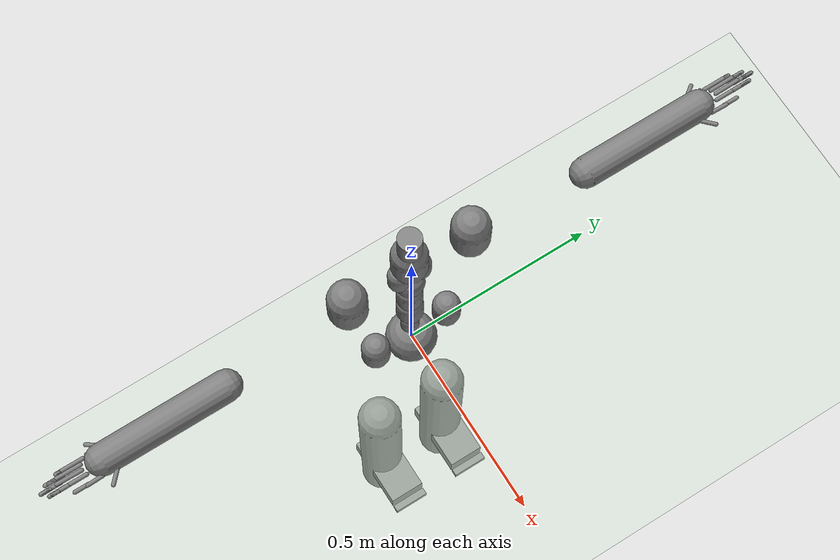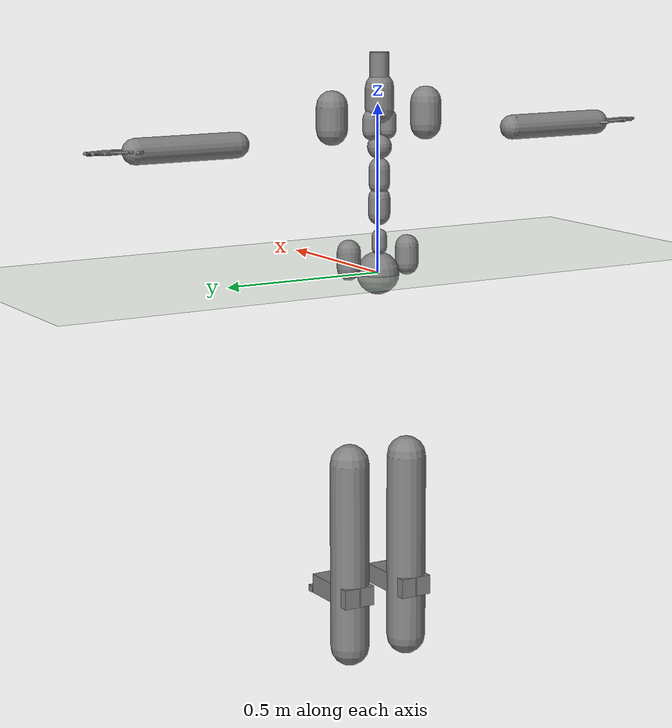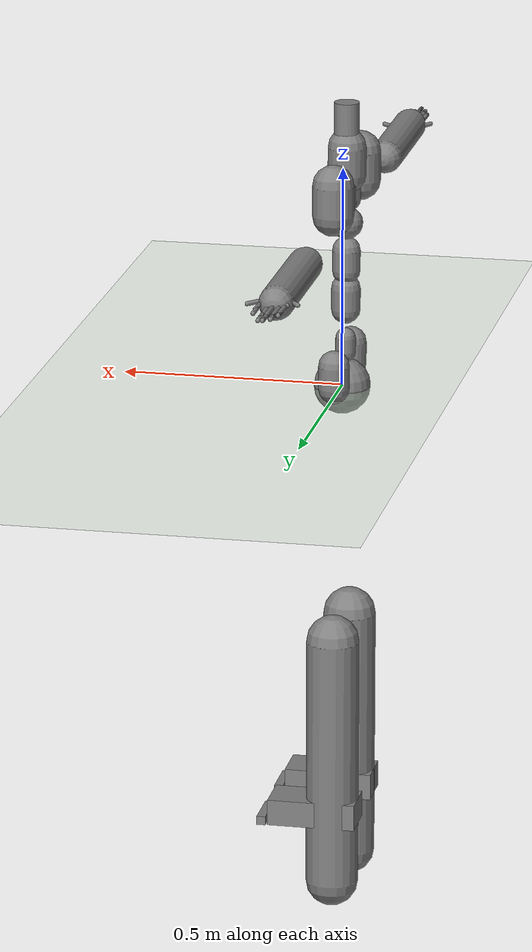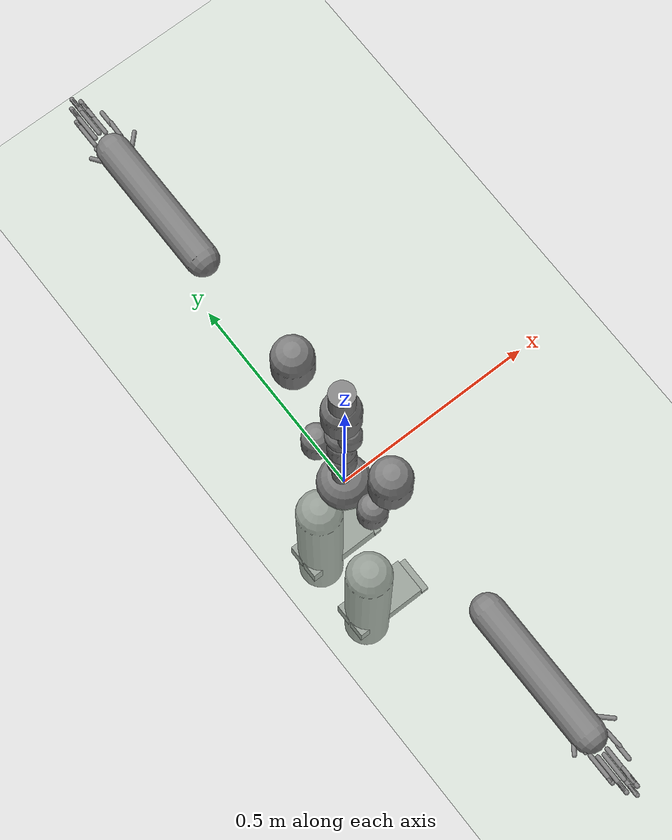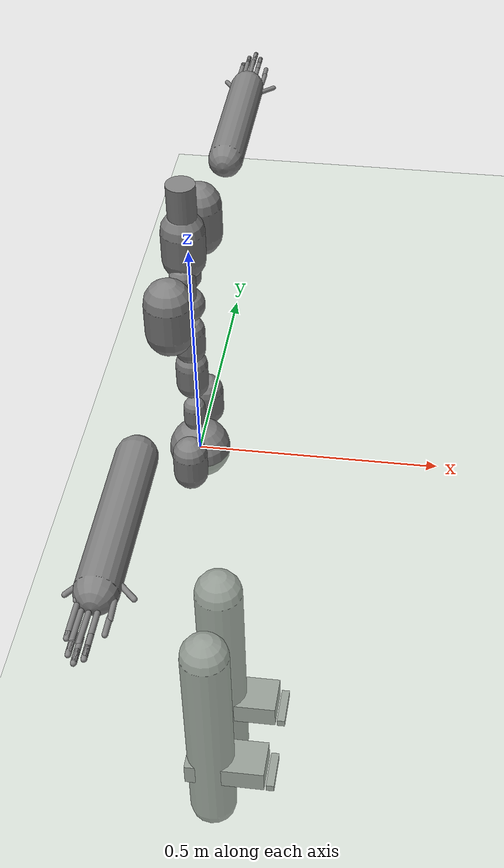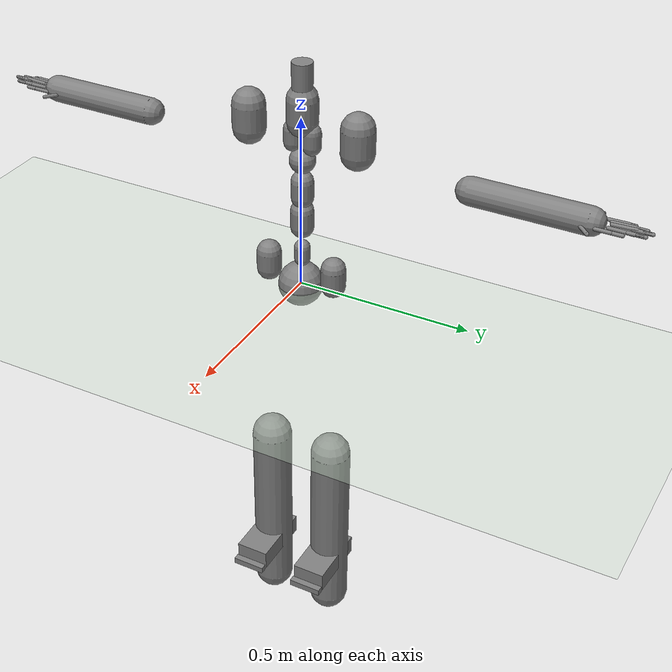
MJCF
<?xml version="1.0" ?>
<mujoco model="humanoid">
  <compiler coordinate="local"/>
  <statistic extent="2" center="0 0 1"/>
  <option timestep="0.00555"/>
  <default>
    <motor ctrlrange="-1 1" ctrllimited="true"/>
    <geom type="capsule" condim="1" friction="1.0 0.05 0.05" solimp=".9 .99 .003" solref=".015 1"/>
    <joint type="hinge" damping="0.1" stiffness="5" armature=".007" limited="true" solimplimit="0 .99 .01"/>
    <site size=".04" group="3"/>
  </default>
  <asset>
    <texture type="skybox" builtin="gradient" rgb1=".4 .5 .6" rgb2="0 0 0" width="100" height="100"/>
    <texture builtin="flat" height="1278" mark="cross" markrgb="1 1 1" name="texgeom" random="0.01" rgb1="0.8 0.6 0.4" rgb2="0.8 0.6 0.4" type="cube" width="127"/>
    <texture builtin="checker" height="100" name="texplane" rgb1="0 0 0" rgb2="0.8 0.8 0.8" type="2d" width="100"/>
    <material name="MatPlane" reflectance="0.5" shininess="1" specular="1" texrepeat="60 60" texture="texplane"/>
    <material name="geom" texture="texgeom" texuniform="true"/>
  </asset>
  <worldbody>
    <light cutoff="100" diffuse="1 1 1" dir="-0 0 -1.3" directional="true" exponent="1" pos="0 0 1.3" specular=".1 .1 .1"/>
    <geom conaffinity="1" condim="3" name="floor" pos="0 0 0" rgba="0.8 0.9 0.8 1" size="100 100 .2" type="plane" material="MatPlane"/>
    <body name="pHipOrigin" pos="0 0 0">
      <freejoint name="pHipOrigin"/>
      <geom type="sphere" contype="1" conaffinity="1" density="4629.6296296296305" size="0.06378" pos="0.0000 0.0000 -0.0000"/>
      <body name="jL5S1" pos="-0.00718730 0 0.06468552">
        <geom type="capsule" contype="1" conaffinity="1" density="1000" fromto="0 0 0.01302 0 0 0.04556" size="0.02278"/>
        <joint name="jL5S1_x" type="hinge" pos="0 0 0" axis="1 0 0" stiffness="500" damping="500" armature="0.02" range="-180.0000 180.0000"/>
        <joint name="jL5S1_y" type="hinge" pos="0 0 0" axis="0 1 0" stiffness="500" damping="500" armature="0.02" range="-180.0000 180.0000"/>
        <joint name="jL5S1_z" type="hinge" pos="0 0 0" axis="0 0 1" stiffness="500" damping="500" armature="0.02" range="-180.0000 180.0000"/>
        <body name="jL4L3" pos="0 0 0.09388383">
          <geom type="capsule" contype="1" conaffinity="1" density="1000" fromto="0 0 0.01878 0 0 0.06572" size="0.03286"/>
          <joint name="jL4L3_x" type="hinge" pos="0 0 0" axis="1 0 0" stiffness="500" damping="500" armature="0.02" range="-180.0000 180.0000"/>
          <joint name="jL4L3_y" type="hinge" pos="0 0 0" axis="0 1 0" stiffness="500" damping="500" armature="0.02" range="-180.0000 180.0000"/>
          <joint name="jL4L3_z" type="hinge" pos="0 0 0" axis="0 0 1" stiffness="500" damping="500" armature="0.02" range="-180.0000 180.0000"/>
          <body name="jL1T12" pos="-0.00069758 0 0.09041847">
            <geom type="capsule" contype="1" conaffinity="1" density="1000" fromto="0 0 0.01808 0 0 0.06329" size="0.03165"/>
            <joint name="jL1T12_x" type="hinge" pos="0 0 0" axis="1 0 0" stiffness="500" damping="500" armature="0.02" range="-180.0000 180.0000"/>
            <joint name="jL1T12_y" type="hinge" pos="0 0 0" axis="0 1 0" stiffness="500" damping="500" armature="0.02" range="-180.0000 180.0000"/>
            <joint name="jL1T12_z" type="hinge" pos="0 0 0" axis="0 0 1" stiffness="500" damping="500" armature="0.02" range="-180.0000 180.0000"/>
            <body name="jT9T8" pos="-0.00070014 0 0.09057368">
              <geom type="sphere" contype="1" conaffinity="1" density="1000" size="0.03623" pos="0.000 0.0000 0.036231"/>
              <joint name="jT9T8_x" type="hinge" pos="0 0 0" axis="1 0 0" stiffness="500" damping="500" armature="0.02" range="-180.0000 180.0000"/>
              <joint name="jT9T8_y" type="hinge" pos="0 0 0" axis="0 1 0" stiffness="500" damping="500" armature="0.02" range="-180.0000 180.0000"/>
              <joint name="jT9T8_z" type="hinge" pos="0 0 0" axis="0 0 1" stiffness="500" damping="500" armature="0.02" range="-180.0000 180.0000"/>
              <body name="jT1C7" pos="0 0 0.12274900">
                <geom type="capsule" contype="1" conaffinity="1" density="1000" fromto="0 0 0.02455 0 0 0.08592" size="0.04296"/>
                <joint name="jT1C7_x" type="hinge" pos="0 0 0" axis="1 0 0" stiffness="500" damping="500" armature="0.02" range="-180.0000 180.0000"/>
                <joint name="jT1C7_y" type="hinge" pos="0 0 0" axis="0 1 0" stiffness="500" damping="500" armature="0.02" range="-180.0000 180.0000"/>
                <joint name="jT1C7_z" type="hinge" pos="0 0 0" axis="0 0 1" stiffness="500" damping="500" armature="0.02" range="-180.0000 180.0000"/>
                <body name="jC1Head" pos="0.00111202 0 0.09425794">
                  <geom type="cylinder" contype="1" conaffinity="1" density="1000" fromto="0 0 0 0 0 0.09426" size="0.02828"/>
                  <joint name="jC1Head_x" type="hinge" pos="0 0 0" axis="1 0 0" stiffness="500" damping="500" armature="0.02" range="-180.0000 180.0000"/>
                  <joint name="jC1Head_y" type="hinge" pos="0 0 0" axis="0 1 0" stiffness="500" damping="500" armature="0.02" range="-180.0000 180.0000"/>
                  <joint name="jC1Head_z" type="hinge" pos="0 0 0" axis="0 0 1" stiffness="500" damping="500" armature="0.02" range="-180.0000 180.0000"/>
                </body>
              </body>
              <body name="jRightT4Shoulder" pos="0 -0.02812971 0.06858641">
                <geom type="capsule" contype="1" conaffinity="1" density="1000" fromto="0 0 0.01483 0 0 0.05189" size="0.02595"/>
                <joint name="jRightT4Shoulder_x" type="hinge" pos="0 0 0" axis="1 0 0" stiffness="500" damping="500" armature="0.02" range="-180.0000 180.0000"/>
                <joint name="jRightT4Shoulder_y" type="hinge" pos="0 0 0" axis="0 1 0" stiffness="500" damping="500" armature="0.02" range="-180.0000 180.0000"/>
                <joint name="jRightT4Shoulder_z" type="hinge" pos="0 0 0" axis="0 0 1" stiffness="500" damping="500" armature="0.02" range="-180.0000 180.0000"/>
                <body name="jRightShoulder" pos="0 -0.13208346 0">
                  <geom type="capsule" contype="1" conaffinity="1" density="1000" fromto="0 0 0.02642 0 0 0.09246" size="0.04623"/>
                  <joint name="jRightShoulder_x" type="hinge" pos="0 0 0" axis="1 0 0" stiffness="500" damping="500" armature="0.02" range="-180.0000 180.0000"/>
                  <joint name="jRightShoulder_y" type="hinge" pos="0 0 0" axis="0 1 0" stiffness="500" damping="500" armature="0.02" range="-180.0000 180.0000"/>
                  <joint name="jRightShoulder_z" type="hinge" pos="0 0 0" axis="0 0 1" stiffness="500" damping="500" armature="0.02" range="-180.0000 180.0000"/>
                  <body name="jRightElbow" pos="0 -0.31279701 0">
                    <geom type="capsule" contype="1" conaffinity="1" density="1000" fromto="0 0 0 0.00000000 -0.31279701 0.00000000" size="0.03754"/>
                    <joint name="jRightElbow_x" type="hinge" pos="0 0 0" axis="1 0 0" stiffness="500" damping="500" armature="0.02" range="-180.0000 180.0000"/>
                    <joint name="jRightElbow_y" type="hinge" pos="0 0 0" axis="0 1 0" stiffness="500" damping="500" armature="0.02" range="-180.0000 180.0000"/>
                    <joint name="jRightElbow_z" type="hinge" pos="0 0 0" axis="0 0 1" stiffness="500" damping="500" armature="0.02" range="-180.0000 180.0000"/>
                    <body name="jRightWrist" pos="0.00010446 -0.25954044 0">
                      <geom density="1000" type="box" pos="0 0 0" size="0.035 0.03 0.01" quat="1.0000 0.0000 0.0000 0.0000"/>
                      <joint name="jRightWrist_x" type="hinge" pos="0 0 0" axis="1 0 0" stiffness="500" damping="500" armature="0.02" range="-180.0000 180.0000"/>
                      <joint name="jRightWrist_y" type="hinge" pos="0 0 0" axis="0 1 0" stiffness="500" damping="500" armature="0.02" range="-180.0000 180.0000"/>
                      <joint name="jRightWrist_z" type="hinge" pos="0 0 0" axis="0 0 1" stiffness="500" damping="500" armature="0.02" range="-180.0000 180.0000"/>
                      <body name="jRightFirstCMC" pos="0.03066655 -0.02939561 -0.00138877">
                        <geom type="capsule" contype="1" conaffinity="1" density="1000" fromto="0 0 0 0.03066655 -0.02939561 -0.00138877" size="0.005"/>
                        <joint name="jRightFirstCMC_x" type="hinge" pos="0 0 0" axis="1 0 0" stiffness="500" damping="500" armature="0.02" range="-180.0000 180.0000"/>
                        <joint name="jRightFirstCMC_y" type="hinge" pos="0 0 0" axis="0 1 0" stiffness="500" damping="500" armature="0.02" range="-180.0000 180.0000"/>
                        <joint name="jRightFirstCMC_z" type="hinge" pos="0 0 0" axis="0 0 1" stiffness="500" damping="500" armature="0.02" range="-180.0000 180.0000"/>
                        <body name="jRightFirstMCP" pos="0.00138104 -0.03897191 0.00082347">
                          <geom type="capsule" contype="1" conaffinity="1" density="1000" fromto="0 0 0 0.00138104 -0.03897191 0.00082347" size="0.005"/>
                          <joint name="jRightFirstMCP_x" type="hinge" pos="0 0 0" axis="1 0 0" stiffness="500" damping="500" armature="0.02" range="-180.0000 180.0000"/>
                          <joint name="jRightFirstMCP_y" type="hinge" pos="0 0 0" axis="0 1 0" stiffness="500" damping="500" armature="0.02" range="-180.0000 180.0000"/>
                          <joint name="jRightFirstMCP_z" type="hinge" pos="0 0 0" axis="0 0 1" stiffness="500" damping="500" armature="0.02" range="-180.0000 180.0000"/>
                          <body name="jRightIP" pos="0 -0.03426482 0">
                            <geom type="capsule" contype="1" conaffinity="1" density="1000" fromto="0 0 0 0.00000000 -0.03426482 0.00000000" size="0.005"/>
                            <joint name="jRightIP_x" type="hinge" pos="0 0 0" axis="1 0 0" stiffness="500" damping="500" armature="0.02" range="-180.0000 180.0000"/>
                            <joint name="jRightIP_y" type="hinge" pos="0 0 0" axis="0 1 0" stiffness="500" damping="500" armature="0.02" range="-180.0000 180.0000"/>
                            <joint name="jRightIP_z" type="hinge" pos="0 0 0" axis="0 0 1" stiffness="500" damping="500" armature="0.02" range="-180.0000 180.0000"/>
                          </body>
                        </body>
                      </body>
                      <body name="jRightSecondCMC" pos="0.01122575 -0.03279808 -0.00057208">
                        <geom type="capsule" contype="1" conaffinity="1" density="1000" fromto="0 0 0 0.01122575 -0.03279808 -0.00057208" size="0.005"/>
                        <joint name="jRightSecondCMC_x" type="hinge" pos="0 0 0" axis="1 0 0" stiffness="500" damping="500" armature="0.02" range="-180.0000 180.0000"/>
                        <joint name="jRightSecondCMC_y" type="hinge" pos="0 0 0" axis="0 1 0" stiffness="500" damping="500" armature="0.02" range="-180.0000 180.0000"/>
                        <joint name="jRightSecondCMC_z" type="hinge" pos="0 0 0" axis="0 0 1" stiffness="500" damping="500" armature="0.02" range="-180.0000 180.0000"/>
                        <body name="jRightSecondMCP" pos="-0.00039542 -0.06306709 -0.00065421">
                          <geom type="capsule" contype="1" conaffinity="1" density="1000" fromto="0 0 0 -0.00039542 -0.06306709 -0.00065421" size="0.005"/>
                          <joint name="jRightSecondMCP_x" type="hinge" pos="0 0 0" axis="1 0 0" stiffness="500" damping="500" armature="0.02" range="-180.0000 180.0000"/>
                          <joint name="jRightSecondMCP_y" type="hinge" pos="0 0 0" axis="0 1 0" stiffness="500" damping="500" armature="0.02" range="-180.0000 180.0000"/>
                          <joint name="jRightSecondMCP_z" type="hinge" pos="0 0 0" axis="0 0 1" stiffness="500" damping="500" armature="0.02" range="-180.0000 180.0000"/>
                          <body name="jRightSecondPIP" pos="0 -0.04563735 0">
                            <geom type="capsule" contype="1" conaffinity="1" density="1000" fromto="0 0 0 0.00000000 -0.04563735 0.00000000" size="0.005"/>
                            <joint name="jRightSecondPIP_x" type="hinge" pos="0 0 0" axis="1 0 0" stiffness="500" damping="500" armature="0.02" range="-180.0000 180.0000"/>
                            <joint name="jRightSecondPIP_y" type="hinge" pos="0 0 0" axis="0 1 0" stiffness="500" damping="500" armature="0.02" range="-180.0000 180.0000"/>
                            <joint name="jRightSecondPIP_z" type="hinge" pos="0 0 0" axis="0 0 1" stiffness="500" damping="500" armature="0.02" range="-180.0000 180.0000"/>
                            <body name="jRightSecondDIP" pos="0 -0.02106094 0">
                              <geom type="capsule" contype="1" conaffinity="1" density="1000" fromto="0 0 0 0.00000000 -0.02106094 0.00000000" size="0.005"/>
                              <joint name="jRightSecondDIP_x" type="hinge" pos="0 0 0" axis="1 0 0" stiffness="500" damping="500" armature="0.02" range="-180.0000 180.0000"/>
                              <joint name="jRightSecondDIP_y" type="hinge" pos="0 0 0" axis="0 1 0" stiffness="500" damping="500" armature="0.02" range="-180.0000 180.0000"/>
                              <joint name="jRightSecondDIP_z" type="hinge" pos="0 0 0" axis="0 0 1" stiffness="500" damping="500" armature="0.02" range="-180.0000 180.0000"/>
                            </body>
                          </body>
                        </body>
                      </body>
                      <body name="jRightThirdCMC" pos="-0.00073629 -0.03981684 0.00167396">
                        <geom type="capsule" contype="1" conaffinity="1" density="1000" fromto="0 0 0 -0.00073629 -0.03981684 0.00167396" size="0.005"/>
                        <joint name="jRightThirdCMC_x" type="hinge" pos="0 0 0" axis="1 0 0" stiffness="500" damping="500" armature="0.02" range="-180.0000 180.0000"/>
                        <joint name="jRightThirdCMC_y" type="hinge" pos="0 0 0" axis="0 1 0" stiffness="500" damping="500" armature="0.02" range="-180.0000 180.0000"/>
                        <joint name="jRightThirdCMC_z" type="hinge" pos="0 0 0" axis="0 0 1" stiffness="500" damping="500" armature="0.02" range="-180.0000 180.0000"/>
                        <body name="jRightThirdMCP" pos="-0.00073762 -0.06111223 0.00166263">
                          <geom type="capsule" contype="1" conaffinity="1" density="1000" fromto="0 0 0 -0.00073762 -0.06111223 0.00166263" size="0.005"/>
                          <joint name="jRightThirdMCP_x" type="hinge" pos="0 0 0" axis="1 0 0" stiffness="500" damping="500" armature="0.02" range="-180.0000 180.0000"/>
                          <joint name="jRightThirdMCP_y" type="hinge" pos="0 0 0" axis="0 1 0" stiffness="500" damping="500" armature="0.02" range="-180.0000 180.0000"/>
                          <joint name="jRightThirdMCP_z" type="hinge" pos="0 0 0" axis="0 0 1" stiffness="500" damping="500" armature="0.02" range="-180.0000 180.0000"/>
                          <body name="jRightThirdPIP" pos="0 -0.04975163 0">
                            <geom type="capsule" contype="1" conaffinity="1" density="1000" fromto="0 0 0 0.00000000 -0.04975163 0.00000000" size="0.005"/>
                            <joint name="jRightThirdPIP_x" type="hinge" pos="0 0 0" axis="1 0 0" stiffness="500" damping="500" armature="0.02" range="-180.0000 180.0000"/>
                            <joint name="jRightThirdPIP_y" type="hinge" pos="0 0 0" axis="0 1 0" stiffness="500" damping="500" armature="0.02" range="-180.0000 180.0000"/>
                            <joint name="jRightThirdPIP_z" type="hinge" pos="0 0 0" axis="0 0 1" stiffness="500" damping="500" armature="0.02" range="-180.0000 180.0000"/>
                            <body name="jRightThirdDIP" pos="0 -0.02392335 0">
                              <geom type="capsule" contype="1" conaffinity="1" density="1000" fromto="0 0 0 0.00000000 -0.02392335 0.00000000" size="0.005"/>
                              <joint name="jRightThirdDIP_x" type="hinge" pos="0 0 0" axis="1 0 0" stiffness="500" damping="500" armature="0.02" range="-180.0000 180.0000"/>
                              <joint name="jRightThirdDIP_y" type="hinge" pos="0 0 0" axis="0 1 0" stiffness="500" damping="500" armature="0.02" range="-180.0000 180.0000"/>
                              <joint name="jRightThirdDIP_z" type="hinge" pos="0 0 0" axis="0 0 1" stiffness="500" damping="500" armature="0.02" range="-180.0000 180.0000"/>
                            </body>
                          </body>
                        </body>
                      </body>
                      <body name="jRightFourthCMC" pos="-0.01355431 -0.03775100 0.00088860">
                        <geom type="capsule" contype="1" conaffinity="1" density="1000" fromto="0 0 0 -0.01355431 -0.03775100 0.00088860" size="0.005"/>
                        <joint name="jRightFourthCMC_x" type="hinge" pos="0 0 0" axis="1 0 0" stiffness="500" damping="500" armature="0.02" range="-180.0000 180.0000"/>
                        <joint name="jRightFourthCMC_y" type="hinge" pos="0 0 0" axis="0 1 0" stiffness="500" damping="500" armature="0.02" range="-180.0000 180.0000"/>
                        <joint name="jRightFourthCMC_z" type="hinge" pos="0 0 0" axis="0 0 1" stiffness="500" damping="500" armature="0.02" range="-180.0000 180.0000"/>
                        <body name="jRightFourthMCP" pos="-0.00043302 -0.05935017 0.00093244">
                          <geom type="capsule" contype="1" conaffinity="1" density="1000" fromto="0 0 0 -0.00043302 -0.05935017 0.00093244" size="0.005"/>
                          <joint name="jRightFourthMCP_x" type="hinge" pos="0 0 0" axis="1 0 0" stiffness="500" damping="500" armature="0.02" range="-180.0000 180.0000"/>
                          <joint name="jRightFourthMCP_y" type="hinge" pos="0 0 0" axis="0 1 0" stiffness="500" damping="500" armature="0.02" range="-180.0000 180.0000"/>
                          <joint name="jRightFourthMCP_z" type="hinge" pos="0 0 0" axis="0 0 1" stiffness="500" damping="500" armature="0.02" range="-180.0000 180.0000"/>
                          <body name="jRightFourthPIP" pos="0 -0.04136144 0">
                            <geom type="capsule" contype="1" conaffinity="1" density="1000" fromto="0 0 0 0.00000000 -0.04136144 0.00000000" size="0.005"/>
                            <joint name="jRightFourthPIP_x" type="hinge" pos="0 0 0" axis="1 0 0" stiffness="500" damping="500" armature="0.02" range="-180.0000 180.0000"/>
                            <joint name="jRightFourthPIP_y" type="hinge" pos="0 0 0" axis="0 1 0" stiffness="500" damping="500" armature="0.02" range="-180.0000 180.0000"/>
                            <joint name="jRightFourthPIP_z" type="hinge" pos="0 0 0" axis="0 0 1" stiffness="500" damping="500" armature="0.02" range="-180.0000 180.0000"/>
                            <body name="jRightFourthDIP" pos="0 -0.02276745 0">
                              <geom type="capsule" contype="1" conaffinity="1" density="1000" fromto="0 0 0 0.00000000 -0.02276745 0.00000000" size="0.005"/>
                              <joint name="jRightFourthDIP_x" type="hinge" pos="0 0 0" axis="1 0 0" stiffness="500" damping="500" armature="0.02" range="-180.0000 180.0000"/>
                              <joint name="jRightFourthDIP_y" type="hinge" pos="0 0 0" axis="0 1 0" stiffness="500" damping="500" armature="0.02" range="-180.0000 180.0000"/>
                              <joint name="jRightFourthDIP_z" type="hinge" pos="0 0 0" axis="0 0 1" stiffness="500" damping="500" armature="0.02" range="-180.0000 180.0000"/>
                            </body>
                          </body>
                        </body>
                      </body>
                      <body name="jRightFifthCMC" pos="-0.02372965 -0.03306456 0.00065226">
                        <geom type="capsule" contype="1" conaffinity="1" density="1000" fromto="0 0 0 -0.02372965 -0.03306456 0.00065226" size="0.005"/>
                        <joint name="jRightFifthCMC_x" type="hinge" pos="0 0 0" axis="1 0 0" stiffness="500" damping="500" armature="0.02" range="-180.0000 180.0000"/>
                        <joint name="jRightFifthCMC_y" type="hinge" pos="0 0 0" axis="0 1 0" stiffness="500" damping="500" armature="0.02" range="-180.0000 180.0000"/>
                        <joint name="jRightFifthCMC_z" type="hinge" pos="0 0 0" axis="0 0 1" stiffness="500" damping="500" armature="0.02" range="-180.0000 180.0000"/>
                        <body name="jRightFifthMCP" pos="-0.00000779 -0.05275795 0.00072602">
                          <geom type="capsule" contype="1" conaffinity="1" density="1000" fromto="0 0 0 -0.00000779 -0.05275795 0.00072602" size="0.005"/>
                          <joint name="jRightFifthMCP_x" type="hinge" pos="0 0 0" axis="1 0 0" stiffness="500" damping="500" armature="0.02" range="-180.0000 180.0000"/>
                          <joint name="jRightFifthMCP_y" type="hinge" pos="0 0 0" axis="0 1 0" stiffness="500" damping="500" armature="0.02" range="-180.0000 180.0000"/>
                          <joint name="jRightFifthMCP_z" type="hinge" pos="0 0 0" axis="0 0 1" stiffness="500" damping="500" armature="0.02" range="-180.0000 180.0000"/>
                          <body name="jRightFifthPIP" pos="0 -0.03207736 0">
                            <geom type="capsule" contype="1" conaffinity="1" density="1000" fromto="0 0 0 0.00000000 -0.03207736 0.00000000" size="0.005"/>
                            <joint name="jRightFifthPIP_x" type="hinge" pos="0 0 0" axis="1 0 0" stiffness="500" damping="500" armature="0.02" range="-180.0000 180.0000"/>
                            <joint name="jRightFifthPIP_y" type="hinge" pos="0 0 0" axis="0 1 0" stiffness="500" damping="500" armature="0.02" range="-180.0000 180.0000"/>
                            <joint name="jRightFifthPIP_z" type="hinge" pos="0 0 0" axis="0 0 1" stiffness="500" damping="500" armature="0.02" range="-180.0000 180.0000"/>
                            <body name="jRightFifthDIP" pos="0 -0.01742277 0">
                              <geom type="capsule" contype="1" conaffinity="1" density="1000" fromto="0 0 0 0.00000000 -0.01742277 0.00000000" size="0.005"/>
                              <joint name="jRightFifthDIP_x" type="hinge" pos="0 0 0" axis="1 0 0" stiffness="500" damping="500" armature="0.02" range="-180.0000 180.0000"/>
                              <joint name="jRightFifthDIP_y" type="hinge" pos="0 0 0" axis="0 1 0" stiffness="500" damping="500" armature="0.02" range="-180.0000 180.0000"/>
                              <joint name="jRightFifthDIP_z" type="hinge" pos="0 0 0" axis="0 0 1" stiffness="500" damping="500" armature="0.02" range="-180.0000 180.0000"/>
                            </body>
                          </body>
                        </body>
                      </body>
                    </body>
                  </body>
                </body>
              </body>
              <body name="jLeftT4Shoulder" pos="0 0.02794238 0.06812966">
                <geom type="capsule" contype="1" conaffinity="1" density="1000" fromto="0 0 0.01473 0 0 0.05155" size="0.02577"/>
                <joint name="jLeftT4Shoulder_x" type="hinge" pos="0 0 0" axis="1 0 0" stiffness="500" damping="500" armature="0.02" range="-180.0000 180.0000"/>
                <joint name="jLeftT4Shoulder_y" type="hinge" pos="0 0 0" axis="0 1 0" stiffness="500" damping="500" armature="0.02" range="-180.0000 180.0000"/>
                <joint name="jLeftT4Shoulder_z" type="hinge" pos="0 0 0" axis="0 0 1" stiffness="500" damping="500" armature="0.02" range="-180.0000 180.0000"/>
                <body name="jLeftShoulder" pos="0 0.13249691 0">
                  <geom type="capsule" contype="1" conaffinity="1" density="1000" fromto="0 0 0.02650 0 0 0.09275" size="0.04637"/>
                  <joint name="jLeftShoulder_x" type="hinge" pos="0 0 0" axis="1 0 0" stiffness="500" damping="500" armature="0.02" range="-180.0000 180.0000"/>
                  <joint name="jLeftShoulder_y" type="hinge" pos="0 0 0" axis="0 1 0" stiffness="500" damping="500" armature="0.02" range="-180.0000 180.0000"/>
                  <joint name="jLeftShoulder_z" type="hinge" pos="0 0 0" axis="0 0 1" stiffness="500" damping="500" armature="0.02" range="-180.0000 180.0000"/>
                  <body name="jLeftElbow" pos="0 0.31162184 0">
                    <geom type="capsule" contype="1" conaffinity="1" density="1000" fromto="0 0 0 0.00000000 0.31162184 0.00000000" size="0.03739"/>
                    <joint name="jLeftElbow_x" type="hinge" pos="0 0 0" axis="1 0 0" stiffness="500" damping="500" armature="0.02" range="-180.0000 180.0000"/>
                    <joint name="jLeftElbow_y" type="hinge" pos="0 0 0" axis="0 1 0" stiffness="500" damping="500" armature="0.02" range="-180.0000 180.0000"/>
                    <joint name="jLeftElbow_z" type="hinge" pos="0 0 0" axis="0 0 1" stiffness="500" damping="500" armature="0.02" range="-180.0000 180.0000"/>
                    <body name="jLeftWrist" pos="0.00010499 0.26084888 0">
                      <geom density="1000" type="box" pos="0 0 0" size="0.035 0.03 0.01" quat="1.0000 0.0000 0.0000 0.0000"/>
                      <joint name="jLeftWrist_x" type="hinge" pos="0 0 0" axis="1 0 0" stiffness="500" damping="500" armature="0.02" range="-180.0000 180.0000"/>
                      <joint name="jLeftWrist_y" type="hinge" pos="0 0 0" axis="0 1 0" stiffness="500" damping="500" armature="0.02" range="-180.0000 180.0000"/>
                      <joint name="jLeftWrist_z" type="hinge" pos="0 0 0" axis="0 0 1" stiffness="500" damping="500" armature="0.02" range="-180.0000 180.0000"/>
                      <body name="jLeftFirstCMC" pos="0.03001533 0.03008621 -0.00134339">
                        <geom type="capsule" contype="1" conaffinity="1" density="1000" fromto="0 0 0 0.03001533 0.03008621 -0.00134339" size="0.005"/>
                        <joint name="jLeftFirstCMC_x" type="hinge" pos="0 0 0" axis="1 0 0" stiffness="500" damping="500" armature="0.02" range="-180.0000 180.0000"/>
                        <joint name="jLeftFirstCMC_y" type="hinge" pos="0 0 0" axis="0 1 0" stiffness="500" damping="500" armature="0.02" range="-180.0000 180.0000"/>
                        <joint name="jLeftFirstCMC_z" type="hinge" pos="0 0 0" axis="0 0 1" stiffness="500" damping="500" armature="0.02" range="-180.0000 180.0000"/>
                        <body name="jLeftFirstMCP" pos="0.00136773 0.03897104 0.00080251">
                          <geom type="capsule" contype="1" conaffinity="1" density="1000" fromto="0 0 0 0.00136773 0.03897104 0.00080251" size="0.005"/>
                          <joint name="jLeftFirstMCP_x" type="hinge" pos="0 0 0" axis="1 0 0" stiffness="500" damping="500" armature="0.02" range="-180.0000 180.0000"/>
                          <joint name="jLeftFirstMCP_y" type="hinge" pos="0 0 0" axis="0 1 0" stiffness="500" damping="500" armature="0.02" range="-180.0000 180.0000"/>
                          <joint name="jLeftFirstMCP_z" type="hinge" pos="0 0 0" axis="0 0 1" stiffness="500" damping="500" armature="0.02" range="-180.0000 180.0000"/>
                          <body name="jLeftIP" pos="0 0.03426482 0">
                            <geom type="capsule" contype="1" conaffinity="1" density="1000" fromto="0 0 0 0.00000000 0.03426482 0.00000000" size="0.005"/>
                            <joint name="jLeftIP_x" type="hinge" pos="0 0 0" axis="1 0 0" stiffness="500" damping="500" armature="0.02" range="-180.0000 180.0000"/>
                            <joint name="jLeftIP_y" type="hinge" pos="0 0 0" axis="0 1 0" stiffness="500" damping="500" armature="0.02" range="-180.0000 180.0000"/>
                            <joint name="jLeftIP_z" type="hinge" pos="0 0 0" axis="0 0 1" stiffness="500" damping="500" armature="0.02" range="-180.0000 180.0000"/>
                          </body>
                        </body>
                      </body>
                      <body name="jLeftSecondCMC" pos="0.01135505 0.03273774 -0.00057680">
                        <geom type="capsule" contype="1" conaffinity="1" density="1000" fromto="0 0 0 0.01135505 0.03273774 -0.00057680" size="0.005"/>
                        <joint name="jLeftSecondCMC_x" type="hinge" pos="0 0 0" axis="1 0 0" stiffness="500" damping="500" armature="0.02" range="-180.0000 180.0000"/>
                        <joint name="jLeftSecondCMC_y" type="hinge" pos="0 0 0" axis="0 1 0" stiffness="500" damping="500" armature="0.02" range="-180.0000 180.0000"/>
                        <joint name="jLeftSecondCMC_z" type="hinge" pos="0 0 0" axis="0 0 1" stiffness="500" damping="500" armature="0.02" range="-180.0000 180.0000"/>
                        <body name="jLeftSecondMCP" pos="-0.00034478 0.06306838 -0.00066230">
                          <geom type="capsule" contype="1" conaffinity="1" density="1000" fromto="0 0 0 -0.00034478 0.06306838 -0.00066230" size="0.005"/>
                          <joint name="jLeftSecondMCP_x" type="hinge" pos="0 0 0" axis="1 0 0" stiffness="500" damping="500" armature="0.02" range="-180.0000 180.0000"/>
                          <joint name="jLeftSecondMCP_y" type="hinge" pos="0 0 0" axis="0 1 0" stiffness="500" damping="500" armature="0.02" range="-180.0000 180.0000"/>
                          <joint name="jLeftSecondMCP_z" type="hinge" pos="0 0 0" axis="0 0 1" stiffness="500" damping="500" armature="0.02" range="-180.0000 180.0000"/>
                          <body name="jLeftSecondPIP" pos="0 0.04563735 0">
                            <geom type="capsule" contype="1" conaffinity="1" density="1000" fromto="0 0 0 0.00000000 0.04563735 0.00000000" size="0.005"/>
                            <joint name="jLeftSecondPIP_x" type="hinge" pos="0 0 0" axis="1 0 0" stiffness="500" damping="500" armature="0.02" range="-180.0000 180.0000"/>
                            <joint name="jLeftSecondPIP_y" type="hinge" pos="0 0 0" axis="0 1 0" stiffness="500" damping="500" armature="0.02" range="-180.0000 180.0000"/>
                            <joint name="jLeftSecondPIP_z" type="hinge" pos="0 0 0" axis="0 0 1" stiffness="500" damping="500" armature="0.02" range="-180.0000 180.0000"/>
                            <body name="jLeftSecondDIP" pos="0 0.02106094 0">
                              <geom type="capsule" contype="1" conaffinity="1" density="1000" fromto="0 0 0 0.00000000 0.02106094 0.00000000" size="0.005"/>
                              <joint name="jLeftSecondDIP_x" type="hinge" pos="0 0 0" axis="1 0 0" stiffness="500" damping="500" armature="0.02" range="-180.0000 180.0000"/>
                              <joint name="jLeftSecondDIP_y" type="hinge" pos="0 0 0" axis="0 1 0" stiffness="500" damping="500" armature="0.02" range="-180.0000 180.0000"/>
                              <joint name="jLeftSecondDIP_z" type="hinge" pos="0 0 0" axis="0 0 1" stiffness="500" damping="500" armature="0.02" range="-180.0000 180.0000"/>
                            </body>
                          </body>
                        </body>
                      </body>
                      <body name="jLeftThirdCMC" pos="-0.00074061 0.03982042 0.00161816">
                        <geom type="capsule" contype="1" conaffinity="1" density="1000" fromto="0 0 0 -0.00074061 0.03982042 0.00161816" size="0.005"/>
                        <joint name="jLeftThirdCMC_x" type="hinge" pos="0 0 0" axis="1 0 0" stiffness="500" damping="500" armature="0.02" range="-180.0000 180.0000"/>
                        <joint name="jLeftThirdCMC_y" type="hinge" pos="0 0 0" axis="0 1 0" stiffness="500" damping="500" armature="0.02" range="-180.0000 180.0000"/>
                        <joint name="jLeftThirdCMC_z" type="hinge" pos="0 0 0" axis="0 0 1" stiffness="500" damping="500" armature="0.02" range="-180.0000 180.0000"/>
                        <body name="jLeftThirdMCP" pos="-0.00074358 0.06111342 0.00162920">
                          <geom type="capsule" contype="1" conaffinity="1" density="1000" fromto="0 0 0 -0.00074358 0.06111342 0.00162920" size="0.005"/>
                          <joint name="jLeftThirdMCP_x" type="hinge" pos="0 0 0" axis="1 0 0" stiffness="500" damping="500" armature="0.02" range="-180.0000 180.0000"/>
                          <joint name="jLeftThirdMCP_y" type="hinge" pos="0 0 0" axis="0 1 0" stiffness="500" damping="500" armature="0.02" range="-180.0000 180.0000"/>
                          <joint name="jLeftThirdMCP_z" type="hinge" pos="0 0 0" axis="0 0 1" stiffness="500" damping="500" armature="0.02" range="-180.0000 180.0000"/>
                          <body name="jLeftThirdPIP" pos="0 0.04975163 0">
                            <geom type="capsule" contype="1" conaffinity="1" density="1000" fromto="0 0 0 0.00000000 0.04975163 0.00000000" size="0.005"/>
                            <joint name="jLeftThirdPIP_x" type="hinge" pos="0 0 0" axis="1 0 0" stiffness="500" damping="500" armature="0.02" range="-180.0000 180.0000"/>
                            <joint name="jLeftThirdPIP_y" type="hinge" pos="0 0 0" axis="0 1 0" stiffness="500" damping="500" armature="0.02" range="-180.0000 180.0000"/>
                            <joint name="jLeftThirdPIP_z" type="hinge" pos="0 0 0" axis="0 0 1" stiffness="500" damping="500" armature="0.02" range="-180.0000 180.0000"/>
                            <body name="jLeftThirdDIP" pos="0 0.02392335 0">
                              <geom type="capsule" contype="1" conaffinity="1" density="1000" fromto="0 0 0 0.00000000 0.02392335 0.00000000" size="0.005"/>
                              <joint name="jLeftThirdDIP_x" type="hinge" pos="0 0 0" axis="1 0 0" stiffness="500" damping="500" armature="0.02" range="-180.0000 180.0000"/>
                              <joint name="jLeftThirdDIP_y" type="hinge" pos="0 0 0" axis="0 1 0" stiffness="500" damping="500" armature="0.02" range="-180.0000 180.0000"/>
                              <joint name="jLeftThirdDIP_z" type="hinge" pos="0 0 0" axis="0 0 1" stiffness="500" damping="500" armature="0.02" range="-180.0000 180.0000"/>
                            </body>
                          </body>
                        </body>
                      </body>
                      <body name="jLeftFourthCMC" pos="-0.01405167 0.03755790 0.00094857">
                        <geom type="capsule" contype="1" conaffinity="1" density="1000" fromto="0 0 0 -0.01405167 0.03755790 0.00094857" size="0.005"/>
                        <joint name="jLeftFourthCMC_x" type="hinge" pos="0 0 0" axis="1 0 0" stiffness="500" damping="500" armature="0.02" range="-180.0000 180.0000"/>
                        <joint name="jLeftFourthCMC_y" type="hinge" pos="0 0 0" axis="0 1 0" stiffness="500" damping="500" armature="0.02" range="-180.0000 180.0000"/>
                        <joint name="jLeftFourthCMC_z" type="hinge" pos="0 0 0" axis="0 0 1" stiffness="500" damping="500" armature="0.02" range="-180.0000 180.0000"/>
                        <body name="jLeftFourthMCP" pos="-0.00046568 0.05934677 0.00098616">
                          <geom type="capsule" contype="1" conaffinity="1" density="1000" fromto="0 0 0 -0.00046568 0.05934677 0.00098616" size="0.005"/>
                          <joint name="jLeftFourthMCP_x" type="hinge" pos="0 0 0" axis="1 0 0" stiffness="500" damping="500" armature="0.02" range="-180.0000 180.0000"/>
                          <joint name="jLeftFourthMCP_y" type="hinge" pos="0 0 0" axis="0 1 0" stiffness="500" damping="500" armature="0.02" range="-180.0000 180.0000"/>
                          <joint name="jLeftFourthMCP_z" type="hinge" pos="0 0 0" axis="0 0 1" stiffness="500" damping="500" armature="0.02" range="-180.0000 180.0000"/>
                          <body name="jLeftFourthPIP" pos="0 0.04136144 0">
                            <geom type="capsule" contype="1" conaffinity="1" density="1000" fromto="0 0 0 0.00000000 0.04136144 0.00000000" size="0.005"/>
                            <joint name="jLeftFourthPIP_x" type="hinge" pos="0 0 0" axis="1 0 0" stiffness="500" damping="500" armature="0.02" range="-180.0000 180.0000"/>
                            <joint name="jLeftFourthPIP_y" type="hinge" pos="0 0 0" axis="0 1 0" stiffness="500" damping="500" armature="0.02" range="-180.0000 180.0000"/>
                            <joint name="jLeftFourthPIP_z" type="hinge" pos="0 0 0" axis="0 0 1" stiffness="500" damping="500" armature="0.02" range="-180.0000 180.0000"/>
                            <body name="jLeftFourthDIP" pos="0 0.02276745 0">
                              <geom type="capsule" contype="1" conaffinity="1" density="1000" fromto="0 0 0 0.00000000 0.02276745 0.00000000" size="0.005"/>
                              <joint name="jLeftFourthDIP_x" type="hinge" pos="0 0 0" axis="1 0 0" stiffness="500" damping="500" armature="0.02" range="-180.0000 180.0000"/>
                              <joint name="jLeftFourthDIP_y" type="hinge" pos="0 0 0" axis="0 1 0" stiffness="500" damping="500" armature="0.02" range="-180.0000 180.0000"/>
                              <joint name="jLeftFourthDIP_z" type="hinge" pos="0 0 0" axis="0 0 1" stiffness="500" damping="500" armature="0.02" range="-180.0000 180.0000"/>
                            </body>
                          </body>
                        </body>
                      </body>
                      <body name="jLeftFifthCMC" pos="-0.02444851 0.03254184 0.00066274">
                        <geom type="capsule" contype="1" conaffinity="1" density="1000" fromto="0 0 0 -0.02444851 0.03254184 0.00066274" size="0.005"/>
                        <joint name="jLeftFifthCMC_x" type="hinge" pos="0 0 0" axis="1 0 0" stiffness="500" damping="500" armature="0.02" range="-180.0000 180.0000"/>
                        <joint name="jLeftFifthCMC_y" type="hinge" pos="0 0 0" axis="0 1 0" stiffness="500" damping="500" armature="0.02" range="-180.0000 180.0000"/>
                        <joint name="jLeftFifthCMC_z" type="hinge" pos="0 0 0" axis="0 0 1" stiffness="500" damping="500" armature="0.02" range="-180.0000 180.0000"/>
                        <body name="jLeftFifthMCP" pos="-0.00001496 0.05275651 0.00075913">
                          <geom type="capsule" contype="1" conaffinity="1" density="1000" fromto="0 0 0 -0.00001496 0.05275651 0.00075913" size="0.005"/>
                          <joint name="jLeftFifthMCP_x" type="hinge" pos="0 0 0" axis="1 0 0" stiffness="500" damping="500" armature="0.02" range="-180.0000 180.0000"/>
                          <joint name="jLeftFifthMCP_y" type="hinge" pos="0 0 0" axis="0 1 0" stiffness="500" damping="500" armature="0.02" range="-180.0000 180.0000"/>
                          <joint name="jLeftFifthMCP_z" type="hinge" pos="0 0 0" axis="0 0 1" stiffness="500" damping="500" armature="0.02" range="-180.0000 180.0000"/>
                          <body name="jLeftFifthPIP" pos="0 0.03207736 0">
                            <geom type="capsule" contype="1" conaffinity="1" density="1000" fromto="0 0 0 0.00000000 0.03207736 0.00000000" size="0.005"/>
                            <joint name="jLeftFifthPIP_x" type="hinge" pos="0 0 0" axis="1 0 0" stiffness="500" damping="500" armature="0.02" range="-180.0000 180.0000"/>
                            <joint name="jLeftFifthPIP_y" type="hinge" pos="0 0 0" axis="0 1 0" stiffness="500" damping="500" armature="0.02" range="-180.0000 180.0000"/>
                            <joint name="jLeftFifthPIP_z" type="hinge" pos="0 0 0" axis="0 0 1" stiffness="500" damping="500" armature="0.02" range="-180.0000 180.0000"/>
                            <body name="jLeftFifthDIP" pos="0 0.01742277 0">
                              <geom type="capsule" contype="1" conaffinity="1" density="1000" fromto="0 0 0 0.00000000 0.01742277 0.00000000" size="0.005"/>
                              <joint name="jLeftFifthDIP_x" type="hinge" pos="0 0 0" axis="1 0 0" stiffness="500" damping="500" armature="0.02" range="-180.0000 180.0000"/>
                              <joint name="jLeftFifthDIP_y" type="hinge" pos="0 0 0" axis="0 1 0" stiffness="500" damping="500" armature="0.02" range="-180.0000 180.0000"/>
                              <joint name="jLeftFifthDIP_z" type="hinge" pos="0 0 0" axis="0 0 1" stiffness="500" damping="500" armature="0.02" range="-180.0000 180.0000"/>
                            </body>
                          </body>
                        </body>
                      </body>
                    </body>
                  </body>
                </body>
              </body>
            </body>
          </body>
        </body>
      </body>
      <body name="jRightHip" pos="-0.00016985 -0.10079437 0.00152902">
        <geom type="capsule" contype="1" conaffinity="1" density="1000" fromto="0 0 0.02016 0 0 0.07056" size="0.03528"/>
        <joint name="jRightHip_x" type="hinge" pos="0 0 0" axis="1 0 0" stiffness="500" damping="500" armature="0.02" range="-180.0000 180.0000"/>
        <joint name="jRightHip_y" type="hinge" pos="0 0 0" axis="0 1 0" stiffness="500" damping="500" armature="0.02" range="-180.0000 180.0000"/>
        <joint name="jRightHip_z" type="hinge" pos="0 0 0" axis="0 0 1" stiffness="500" damping="500" armature="0.02" range="-180.0000 180.0000"/>
        <body name="jRightKnee" pos="0.00006848 0 -0.57432991">
          <geom type="capsule" contype="1" conaffinity="1" density="1000" fromto="0 0 0 0.00006848 0.00000000 -0.57432991" size="0.06000"/>
          <joint name="jRightKnee_x" type="hinge" pos="0 0 0" axis="1 0 0" stiffness="500" damping="500" armature="0.02" range="-180.0000 180.0000"/>
          <joint name="jRightKnee_y" type="hinge" pos="0 0 0" axis="0 1 0" stiffness="500" damping="500" armature="0.02" range="-180.0000 180.0000"/>
          <joint name="jRightKnee_z" type="hinge" pos="0 0 0" axis="0 0 1" stiffness="500" damping="500" armature="0.02" range="-180.0000 180.0000"/>
          <body name="jRightAnkle" pos="0.00042365 0 -0.37519475">
            <geom density="1000" type="box" pos="0.04 0. -0.03" size="0.1 0.05 0.03" quat="1.0 0 0 0"/>
            <joint name="jRightAnkle_x" type="hinge" pos="0 0 0" axis="1 0 0" stiffness="500" damping="500" armature="0.02" range="-180.0000 180.0000"/>
            <joint name="jRightAnkle_y" type="hinge" pos="0 0 0" axis="0 1 0" stiffness="500" damping="500" armature="0.02" range="-180.0000 180.0000"/>
            <joint name="jRightAnkle_z" type="hinge" pos="0 0 0" axis="0 0 1" stiffness="500" damping="500" armature="0.02" range="-180.0000 180.0000"/>
            <body name="jRightBallFoot" pos="0.15477160 0 -0.07100318">
              <geom density="1000" type="box" pos="0 0 0.02" size="0.01 0.05 0.01" quat="1.0 0 0 0"/>
              <joint name="jRightBallFoot_x" type="hinge" pos="0 0 0" axis="1 0 0" stiffness="500" damping="500" armature="0.02" range="-180.0000 180.0000"/>
              <joint name="jRightBallFoot_y" type="hinge" pos="0 0 0" axis="0 1 0" stiffness="500" damping="500" armature="0.02" range="-180.0000 180.0000"/>
              <joint name="jRightBallFoot_z" type="hinge" pos="0 0 0" axis="0 0 1" stiffness="500" damping="500" armature="0.02" range="-180.0000 180.0000"/>
            </body>
          </body>
        </body>
      </body>
      <body name="jLeftHip" pos="-0.00016707 0.10044478 0.00150356">
        <geom type="capsule" contype="1" conaffinity="1" density="1000" fromto="0 0 0.02009 0 0 0.07032" size="0.03516"/>
        <joint name="jLeftHip_x" type="hinge" pos="0 0 0" axis="1 0 0" stiffness="500" damping="500" armature="0.02" range="-180.0000 180.0000"/>
        <joint name="jLeftHip_y" type="hinge" pos="0 0 0" axis="0 1 0" stiffness="500" damping="500" armature="0.02" range="-180.0000 180.0000"/>
        <joint name="jLeftHip_z" type="hinge" pos="0 0 0" axis="0 0 1" stiffness="500" damping="500" armature="0.02" range="-180.0000 180.0000"/>
        <body name="jLeftKnee" pos="0.00006857 0 -0.57512682">
          <geom type="capsule" contype="1" conaffinity="1" density="1000" fromto="0 0 0 0.00006857 0.00000000 -0.57512682" size="0.06000"/>
          <joint name="jLeftKnee_x" type="hinge" pos="0 0 0" axis="1 0 0" stiffness="500" damping="500" armature="0.02" range="-180.0000 180.0000"/>
          <joint name="jLeftKnee_y" type="hinge" pos="0 0 0" axis="0 1 0" stiffness="500" damping="500" armature="0.02" range="-180.0000 180.0000"/>
          <joint name="jLeftKnee_z" type="hinge" pos="0 0 0" axis="0 0 1" stiffness="500" damping="500" armature="0.02" range="-180.0000 180.0000"/>
          <body name="jLeftAnkle" pos="0.00042365 0 -0.37519475">
            <geom density="1000" type="box" pos="0.04 0. -0.03" size="0.1 0.05 0.03" quat="1.0 0 0 0"/>
            <joint name="jLeftAnkle_x" type="hinge" pos="0 0 0" axis="1 0 0" stiffness="500" damping="500" armature="0.02" range="-180.0000 180.0000"/>
            <joint name="jLeftAnkle_y" type="hinge" pos="0 0 0" axis="0 1 0" stiffness="500" damping="500" armature="0.02" range="-180.0000 180.0000"/>
            <joint name="jLeftAnkle_z" type="hinge" pos="0 0 0" axis="0 0 1" stiffness="500" damping="500" armature="0.02" range="-180.0000 180.0000"/>
            <body name="jLeftBallFoot" pos="0.15477161 0 -0.07100318">
              <geom density="1000" type="box" pos="0 0 0.02" size="0.01 0.05 0.01" quat="1.0 0 0 0"/>
              <joint name="jLeftBallFoot_x" type="hinge" pos="0 0 0" axis="1 0 0" stiffness="500" damping="500" armature="0.02" range="-180.0000 180.0000"/>
              <joint name="jLeftBallFoot_y" type="hinge" pos="0 0 0" axis="0 1 0" stiffness="500" damping="500" armature="0.02" range="-180.0000 180.0000"/>
              <joint name="jLeftBallFoot_z" type="hinge" pos="0 0 0" axis="0 0 1" stiffness="500" damping="500" armature="0.02" range="-180.0000 180.0000"/>
            </body>
          </body>
        </body>
      </body>
    </body>
  </worldbody>
  <actuator>
    <motor name="jL5S1_x" joint="jL5S1_x" gear="500"/>
    <motor name="jL5S1_y" joint="jL5S1_y" gear="500"/>
    <motor name="jL5S1_z" joint="jL5S1_z" gear="500"/>
    <motor name="jL4L3_x" joint="jL4L3_x" gear="500"/>
    <motor name="jL4L3_y" joint="jL4L3_y" gear="500"/>
    <motor name="jL4L3_z" joint="jL4L3_z" gear="500"/>
    <motor name="jL1T12_x" joint="jL1T12_x" gear="500"/>
    <motor name="jL1T12_y" joint="jL1T12_y" gear="500"/>
    <motor name="jL1T12_z" joint="jL1T12_z" gear="500"/>
    <motor name="jT9T8_x" joint="jT9T8_x" gear="500"/>
    <motor name="jT9T8_y" joint="jT9T8_y" gear="500"/>
    <motor name="jT9T8_z" joint="jT9T8_z" gear="500"/>
    <motor name="jT1C7_x" joint="jT1C7_x" gear="500"/>
    <motor name="jT1C7_y" joint="jT1C7_y" gear="500"/>
    <motor name="jT1C7_z" joint="jT1C7_z" gear="500"/>
    <motor name="jC1Head_x" joint="jC1Head_x" gear="500"/>
    <motor name="jC1Head_y" joint="jC1Head_y" gear="500"/>
    <motor name="jC1Head_z" joint="jC1Head_z" gear="500"/>
    <motor name="jRightT4Shoulder_x" joint="jRightT4Shoulder_x" gear="500"/>
    <motor name="jRightT4Shoulder_y" joint="jRightT4Shoulder_y" gear="500"/>
    <motor name="jRightT4Shoulder_z" joint="jRightT4Shoulder_z" gear="500"/>
    <motor name="jRightShoulder_x" joint="jRightShoulder_x" gear="500"/>
    <motor name="jRightShoulder_y" joint="jRightShoulder_y" gear="500"/>
    <motor name="jRightShoulder_z" joint="jRightShoulder_z" gear="500"/>
    <motor name="jRightElbow_x" joint="jRightElbow_x" gear="500"/>
    <motor name="jRightElbow_y" joint="jRightElbow_y" gear="500"/>
    <motor name="jRightElbow_z" joint="jRightElbow_z" gear="500"/>
    <motor name="jRightWrist_x" joint="jRightWrist_x" gear="500"/>
    <motor name="jRightWrist_y" joint="jRightWrist_y" gear="500"/>
    <motor name="jRightWrist_z" joint="jRightWrist_z" gear="500"/>
    <motor name="jLeftT4Shoulder_x" joint="jLeftT4Shoulder_x" gear="500"/>
    <motor name="jLeftT4Shoulder_y" joint="jLeftT4Shoulder_y" gear="500"/>
    <motor name="jLeftT4Shoulder_z" joint="jLeftT4Shoulder_z" gear="500"/>
    <motor name="jLeftShoulder_x" joint="jLeftShoulder_x" gear="500"/>
    <motor name="jLeftShoulder_y" joint="jLeftShoulder_y" gear="500"/>
    <motor name="jLeftShoulder_z" joint="jLeftShoulder_z" gear="500"/>
    <motor name="jLeftElbow_x" joint="jLeftElbow_x" gear="500"/>
    <motor name="jLeftElbow_y" joint="jLeftElbow_y" gear="500"/>
    <motor name="jLeftElbow_z" joint="jLeftElbow_z" gear="500"/>
    <motor name="jLeftWrist_x" joint="jLeftWrist_x" gear="500"/>
    <motor name="jLeftWrist_y" joint="jLeftWrist_y" gear="500"/>
    <motor name="jLeftWrist_z" joint="jLeftWrist_z" gear="500"/>
    <motor name="jRightHip_x" joint="jRightHip_x" gear="500"/>
    <motor name="jRightHip_y" joint="jRightHip_y" gear="500"/>
    <motor name="jRightHip_z" joint="jRightHip_z" gear="500"/>
    <motor name="jRightKnee_x" joint="jRightKnee_x" gear="500"/>
    <motor name="jRightKnee_y" joint="jRightKnee_y" gear="500"/>
    <motor name="jRightKnee_z" joint="jRightKnee_z" gear="500"/>
    <motor name="jRightAnkle_x" joint="jRightAnkle_x" gear="500"/>
    <motor name="jRightAnkle_y" joint="jRightAnkle_y" gear="500"/>
    <motor name="jRightAnkle_z" joint="jRightAnkle_z" gear="500"/>
    <motor name="jRightBallFoot_x" joint="jRightBallFoot_x" gear="500"/>
    <motor name="jRightBallFoot_y" joint="jRightBallFoot_y" gear="500"/>
    <motor name="jRightBallFoot_z" joint="jRightBallFoot_z" gear="500"/>
    <motor name="jLeftHip_x" joint="jLeftHip_x" gear="500"/>
    <motor name="jLeftHip_y" joint="jLeftHip_y" gear="500"/>
    <motor name="jLeftHip_z" joint="jLeftHip_z" gear="500"/>
    <motor name="jLeftKnee_x" joint="jLeftKnee_x" gear="500"/>
    <motor name="jLeftKnee_y" joint="jLeftKnee_y" gear="500"/>
    <motor name="jLeftKnee_z" joint="jLeftKnee_z" gear="500"/>
    <motor name="jLeftAnkle_x" joint="jLeftAnkle_x" gear="500"/>
    <motor name="jLeftAnkle_y" joint="jLeftAnkle_y" gear="500"/>
    <motor name="jLeftAnkle_z" joint="jLeftAnkle_z" gear="500"/>
    <motor name="jLeftBallFoot_x" joint="jLeftBallFoot_x" gear="500"/>
    <motor name="jLeftBallFoot_y" joint="jLeftBallFoot_y" gear="500"/>
    <motor name="jLeftBallFoot_z" joint="jLeftBallFoot_z" gear="500"/>
    <motor name="jLeftFirstCMC_x" joint="jLeftFirstCMC_x" gear="500"/>
    <motor name="jLeftFirstCMC_y" joint="jLeftFirstCMC_y" gear="500"/>
    <motor name="jLeftFirstCMC_z" joint="jLeftFirstCMC_z" gear="500"/>
    <motor name="jLeftFirstMCP_x" joint="jLeftFirstMCP_x" gear="500"/>
    <motor name="jLeftFirstMCP_y" joint="jLeftFirstMCP_y" gear="500"/>
    <motor name="jLeftFirstMCP_z" joint="jLeftFirstMCP_z" gear="500"/>
    <motor name="jLeftIP_x" joint="jLeftIP_x" gear="500"/>
    <motor name="jLeftIP_y" joint="jLeftIP_y" gear="500"/>
    <motor name="jLeftIP_z" joint="jLeftIP_z" gear="500"/>
    <motor name="jLeftSecondCMC_x" joint="jLeftSecondCMC_x" gear="500"/>
    <motor name="jLeftSecondCMC_y" joint="jLeftSecondCMC_y" gear="500"/>
    <motor name="jLeftSecondCMC_z" joint="jLeftSecondCMC_z" gear="500"/>
    <motor name="jLeftSecondMCP_x" joint="jLeftSecondMCP_x" gear="500"/>
    <motor name="jLeftSecondMCP_y" joint="jLeftSecondMCP_y" gear="500"/>
    <motor name="jLeftSecondMCP_z" joint="jLeftSecondMCP_z" gear="500"/>
    <motor name="jLeftSecondPIP_x" joint="jLeftSecondPIP_x" gear="500"/>
    <motor name="jLeftSecondPIP_y" joint="jLeftSecondPIP_y" gear="500"/>
    <motor name="jLeftSecondPIP_z" joint="jLeftSecondPIP_z" gear="500"/>
    <motor name="jLeftSecondDIP_x" joint="jLeftSecondDIP_x" gear="500"/>
    <motor name="jLeftSecondDIP_y" joint="jLeftSecondDIP_y" gear="500"/>
    <motor name="jLeftSecondDIP_z" joint="jLeftSecondDIP_z" gear="500"/>
    <motor name="jLeftThirdCMC_x" joint="jLeftThirdCMC_x" gear="500"/>
    <motor name="jLeftThirdCMC_y" joint="jLeftThirdCMC_y" gear="500"/>
    <motor name="jLeftThirdCMC_z" joint="jLeftThirdCMC_z" gear="500"/>
    <motor name="jLeftThirdMCP_x" joint="jLeftThirdMCP_x" gear="500"/>
    <motor name="jLeftThirdMCP_y" joint="jLeftThirdMCP_y" gear="500"/>
    <motor name="jLeftThirdMCP_z" joint="jLeftThirdMCP_z" gear="500"/>
    <motor name="jLeftThirdPIP_x" joint="jLeftThirdPIP_x" gear="500"/>
    <motor name="jLeftThirdPIP_y" joint="jLeftThirdPIP_y" gear="500"/>
    <motor name="jLeftThirdPIP_z" joint="jLeftThirdPIP_z" gear="500"/>
    <motor name="jLeftThirdDIP_x" joint="jLeftThirdDIP_x" gear="500"/>
    <motor name="jLeftThirdDIP_y" joint="jLeftThirdDIP_y" gear="500"/>
    <motor name="jLeftThirdDIP_z" joint="jLeftThirdDIP_z" gear="500"/>
    <motor name="jLeftFourthCMC_x" joint="jLeftFourthCMC_x" gear="500"/>
    <motor name="jLeftFourthCMC_y" joint="jLeftFourthCMC_y" gear="500"/>
    <motor name="jLeftFourthCMC_z" joint="jLeftFourthCMC_z" gear="500"/>
    <motor name="jLeftFourthMCP_x" joint="jLeftFourthMCP_x" gear="500"/>
    <motor name="jLeftFourthMCP_y" joint="jLeftFourthMCP_y" gear="500"/>
    <motor name="jLeftFourthMCP_z" joint="jLeftFourthMCP_z" gear="500"/>
    <motor name="jLeftFourthPIP_x" joint="jLeftFourthPIP_x" gear="500"/>
    <motor name="jLeftFourthPIP_y" joint="jLeftFourthPIP_y" gear="500"/>
    <motor name="jLeftFourthPIP_z" joint="jLeftFourthPIP_z" gear="500"/>
    <motor name="jLeftFourthDIP_x" joint="jLeftFourthDIP_x" gear="500"/>
    <motor name="jLeftFourthDIP_y" joint="jLeftFourthDIP_y" gear="500"/>
    <motor name="jLeftFourthDIP_z" joint="jLeftFourthDIP_z" gear="500"/>
    <motor name="jLeftFifthCMC_x" joint="jLeftFifthCMC_x" gear="500"/>
    <motor name="jLeftFifthCMC_y" joint="jLeftFifthCMC_y" gear="500"/>
    <motor name="jLeftFifthCMC_z" joint="jLeftFifthCMC_z" gear="500"/>
    <motor name="jLeftFifthMCP_x" joint="jLeftFifthMCP_x" gear="500"/>
    <motor name="jLeftFifthMCP_y" joint="jLeftFifthMCP_y" gear="500"/>
    <motor name="jLeftFifthMCP_z" joint="jLeftFifthMCP_z" gear="500"/>
    <motor name="jLeftFifthPIP_x" joint="jLeftFifthPIP_x" gear="500"/>
    <motor name="jLeftFifthPIP_y" joint="jLeftFifthPIP_y" gear="500"/>
    <motor name="jLeftFifthPIP_z" joint="jLeftFifthPIP_z" gear="500"/>
    <motor name="jLeftFifthDIP_x" joint="jLeftFifthDIP_x" gear="500"/>
    <motor name="jLeftFifthDIP_y" joint="jLeftFifthDIP_y" gear="500"/>
    <motor name="jLeftFifthDIP_z" joint="jLeftFifthDIP_z" gear="500"/>
    <motor name="jRightFirstCMC_x" joint="jRightFirstCMC_x" gear="500"/>
    <motor name="jRightFirstCMC_y" joint="jRightFirstCMC_y" gear="500"/>
    <motor name="jRightFirstCMC_z" joint="jRightFirstCMC_z" gear="500"/>
    <motor name="jRightFirstMCP_x" joint="jRightFirstMCP_x" gear="500"/>
    <motor name="jRightFirstMCP_y" joint="jRightFirstMCP_y" gear="500"/>
    <motor name="jRightFirstMCP_z" joint="jRightFirstMCP_z" gear="500"/>
    <motor name="jRightIP_x" joint="jRightIP_x" gear="500"/>
    <motor name="jRightIP_y" joint="jRightIP_y" gear="500"/>
    <motor name="jRightIP_z" joint="jRightIP_z" gear="500"/>
    <motor name="jRightSecondCMC_x" joint="jRightSecondCMC_x" gear="500"/>
    <motor name="jRightSecondCMC_y" joint="jRightSecondCMC_y" gear="500"/>
    <motor name="jRightSecondCMC_z" joint="jRightSecondCMC_z" gear="500"/>
    <motor name="jRightSecondMCP_x" joint="jRightSecondMCP_x" gear="500"/>
    <motor name="jRightSecondMCP_y" joint="jRightSecondMCP_y" gear="500"/>
    <motor name="jRightSecondMCP_z" joint="jRightSecondMCP_z" gear="500"/>
    <motor name="jRightSecondPIP_x" joint="jRightSecondPIP_x" gear="500"/>
    <motor name="jRightSecondPIP_y" joint="jRightSecondPIP_y" gear="500"/>
    <motor name="jRightSecondPIP_z" joint="jRightSecondPIP_z" gear="500"/>
    <motor name="jRightSecondDIP_x" joint="jRightSecondDIP_x" gear="500"/>
    <motor name="jRightSecondDIP_y" joint="jRightSecondDIP_y" gear="500"/>
    <motor name="jRightSecondDIP_z" joint="jRightSecondDIP_z" gear="500"/>
    <motor name="jRightThirdCMC_x" joint="jRightThirdCMC_x" gear="500"/>
    <motor name="jRightThirdCMC_y" joint="jRightThirdCMC_y" gear="500"/>
    <motor name="jRightThirdCMC_z" joint="jRightThirdCMC_z" gear="500"/>
    <motor name="jRightThirdMCP_x" joint="jRightThirdMCP_x" gear="500"/>
    <motor name="jRightThirdMCP_y" joint="jRightThirdMCP_y" gear="500"/>
    <motor name="jRightThirdMCP_z" joint="jRightThirdMCP_z" gear="500"/>
    <motor name="jRightThirdPIP_x" joint="jRightThirdPIP_x" gear="500"/>
    <motor name="jRightThirdPIP_y" joint="jRightThirdPIP_y" gear="500"/>
    <motor name="jRightThirdPIP_z" joint="jRightThirdPIP_z" gear="500"/>
    <motor name="jRightThirdDIP_x" joint="jRightThirdDIP_x" gear="500"/>
    <motor name="jRightThirdDIP_y" joint="jRightThirdDIP_y" gear="500"/>
    <motor name="jRightThirdDIP_z" joint="jRightThirdDIP_z" gear="500"/>
    <motor name="jRightFourthCMC_x" joint="jRightFourthCMC_x" gear="500"/>
    <motor name="jRightFourthCMC_y" joint="jRightFourthCMC_y" gear="500"/>
    <motor name="jRightFourthCMC_z" joint="jRightFourthCMC_z" gear="500"/>
    <motor name="jRightFourthMCP_x" joint="jRightFourthMCP_x" gear="500"/>
    <motor name="jRightFourthMCP_y" joint="jRightFourthMCP_y" gear="500"/>
    <motor name="jRightFourthMCP_z" joint="jRightFourthMCP_z" gear="500"/>
    <motor name="jRightFourthPIP_x" joint="jRightFourthPIP_x" gear="500"/>
    <motor name="jRightFourthPIP_y" joint="jRightFourthPIP_y" gear="500"/>
    <motor name="jRightFourthPIP_z" joint="jRightFourthPIP_z" gear="500"/>
    <motor name="jRightFourthDIP_x" joint="jRightFourthDIP_x" gear="500"/>
    <motor name="jRightFourthDIP_y" joint="jRightFourthDIP_y" gear="500"/>
    <motor name="jRightFourthDIP_z" joint="jRightFourthDIP_z" gear="500"/>
    <motor name="jRightFifthCMC_x" joint="jRightFifthCMC_x" gear="500"/>
    <motor name="jRightFifthCMC_y" joint="jRightFifthCMC_y" gear="500"/>
    <motor name="jRightFifthCMC_z" joint="jRightFifthCMC_z" gear="500"/>
    <motor name="jRightFifthMCP_x" joint="jRightFifthMCP_x" gear="500"/>
    <motor name="jRightFifthMCP_y" joint="jRightFifthMCP_y" gear="500"/>
    <motor name="jRightFifthMCP_z" joint="jRightFifthMCP_z" gear="500"/>
    <motor name="jRightFifthPIP_x" joint="jRightFifthPIP_x" gear="500"/>
    <motor name="jRightFifthPIP_y" joint="jRightFifthPIP_y" gear="500"/>
    <motor name="jRightFifthPIP_z" joint="jRightFifthPIP_z" gear="500"/>
    <motor name="jRightFifthDIP_x" joint="jRightFifthDIP_x" gear="500"/>
    <motor name="jRightFifthDIP_y" joint="jRightFifthDIP_y" gear="500"/>
    <motor name="jRightFifthDIP_z" joint="jRightFifthDIP_z" gear="500"/>
  </actuator>
</mujoco>
